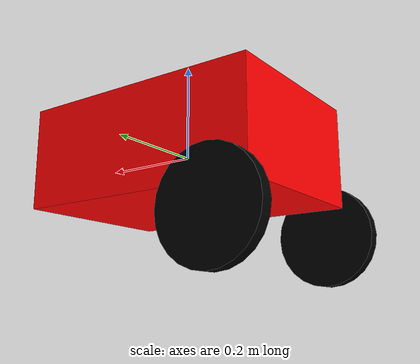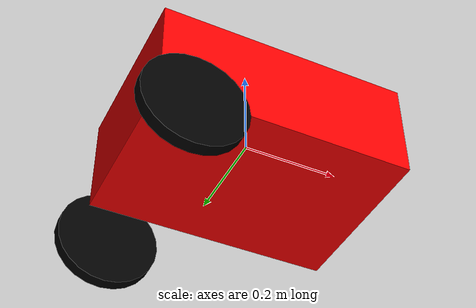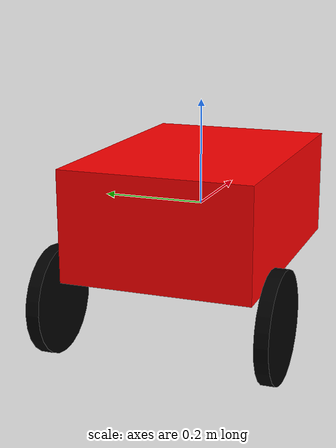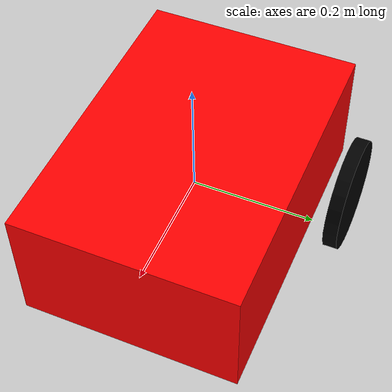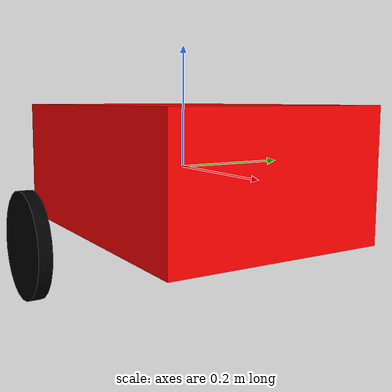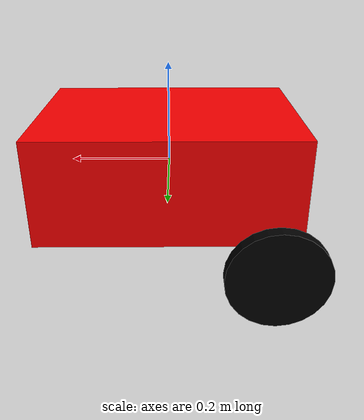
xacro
<?xml version="1.0" encoding="utf-8"?>
<robot name="aug_2024" xmlns:xacro="http://www.ros.org/wiki/xacro">
<xacro:arg name="use_sim" default="false"/>
  <material name="white">
    <color rgba="1 1 1 1"/>
  </material>

  <material name="black">
    <color rgba="0 0 0 1"/>
  </material>

  <material name="red">
    <color rgba="1 0 0 1"/>
  </material>

   <link name="base_link">
    <visual>
      <geometry>
        <box size="0.508 0.3572 0.208"/> <!-- 20x18x20 inches -->
      </geometry>
      <material name="red"/>
    </visual>
    <collision>
      <geometry>
        <box size="0.508 0.4572 0.508"/>
      </geometry>
    </collision>

  </link>

   <link name="rear_right_wheel">
    <visual>
      <geometry>
        <cylinder length="0.0254" radius="0.1016"/> <!-- 8 inch diameter -->
      </geometry>
      <material name="black"/>
    </visual>
    <collision>
      <geometry>
        <cylinder length="0.0254" radius="0.1016"/>
      </geometry>
    </collision>
    <inertial>
      <mass value="1"/>
      <inertia ixx="0.01" ixy="0.0" ixz="0.0" iyy="0.01" iyz="0.0" izz="0.01"/>
    </inertial>
  </link>

  <joint name="rear_right_wheel_joint" type="continuous">
    <parent link="base_link"/>
    <child link="rear_right_wheel"/>
    <origin xyz="-0.2032 -0.20955 -0.154" rpy="1.5707 0 0"/> <!-- 8 inches back, 8.25 inches right, 10 inches down -->
    <axis xyz="0 0 1"/>
  </joint>

 <!-- Left Wheel -->
  <link name="rear_left_wheel">
    <visual>
      <geometry>
        <cylinder length="0.0254" radius="0.1016"/> <!-- 8 inch diameter -->
      </geometry>
      <material name="black"/>
    </visual>
    <collision>
      <geometry>
        <cylinder length="0.0254" radius="0.1016"/>
      </geometry>
    </collision>
    <inertial>
      <mass value="1"/>
      <inertia ixx="0.01" ixy="0.0" ixz="0.0" iyy="0.01" iyz="0.0" izz="0.01"/>
    </inertial>
  </link>

  <joint name="rear_left_wheel_joint" type="continuous">
    <parent link="base_link"/>
    <child link="rear_left_wheel"/>
    <origin xyz="-0.2032 0.20955 -0.154" rpy="1.5707 0 0"/> <!-- 8 inches back, 8.25 inches left, 10 inches down -->
    <axis xyz="0 0 1"/>
  </joint>
  <gazebo reference="rear_left_wheel_link">
    <material>Gazebo/Black</material>
  </gazebo>

<!-- Right Caster -->
<!-- Right Caster Assembly -->

<ros2_control name="AUG2024System" type="system">
  <xacro:if value="$(arg use_sim)">
    <hardware>
      <plugin>gazebo_ros2_control/GazeboSystem</plugin>
    </hardware>
  </xacro:if>
  <xacro:unless value="$(arg use_sim)">
    <hardware>
      <plugin>BMC_2024/AUG2024Hardware</plugin>
      <param name="rear_left_wheel_name">rear_left_wheel_joint</param>
      <param name="rear_right_wheel_name">rear_right_wheel_joint</param>
      <param name="can_interface">can0</param>
      <param name="can_fl_id">183</param>
      <param name="can_fr_id">177</param>
      <param name="can_rl_id">176</param>
      <param name="can_rr_id">178</param>
      <param name="rl_mult">1.0</param>
      <param name="rr_mult">-1.0</param>
      <param name="pid_p">0.5</param>
      <param name="pid_i">10.0</param>
      <param name="pid_d">0.0</param>
    </hardware>
  </xacro:unless>
  <joint name="rear_left_wheel_joint">
    <command_interface name="velocity">
      <param name="min">-10</param>
      <param name="max">10</param>
    </command_interface>
    <state_interface name="velocity"/>
    <state_interface name="position"/>
  </joint>
  <joint name="rear_right_wheel_joint">
    <command_interface name="velocity">
      <param name="min">-10</param>
      <param name="max">10</param>
    </command_interface>
    <state_interface name="velocity"/>
    <state_interface name="position"/>
  </joint>
</ros2_control>

    <gazebo>
      <plugin name="gazebo_ros2_control" filename="libgazebo_ros2_control.so">
         <parameters>$(find aug_2024)/config/flippo_controllers.yaml</parameters>
      </plugin>
    </gazebo>

    <gazebo>
      <plugin name="gazebo_ros_state" filename="libgazebo_ros_state.so">
        <update_rate>100</update_rate>
      </plugin>
    </gazebo>

    <gazebo reference="chassis_link">
      <material>Gazebo/White</material>
    </gazebo>

    <gazebo reference="front_left_wheel_link">
      <material>Gazebo/Black</material>
      <mu1 value="1.0"/>
      <mu2 value="1.0"/>
      <kp value="10000000.0" />
      <kd value="1.0" />
    </gazebo>

    <gazebo reference="front_right_wheel_link">
      <material>Gazebo/Black</material>
      <mu1 value="1.0"/>
      <mu2 value="1.0"/>
      <kp value="10000000.0" />
      <kd value="1.0" />
    </gazebo>

    <gazebo reference="rear_left_wheel_link">
      <material>Gazebo/Black</material>
      <mu1 value="1.0"/>
      <mu2 value="1.0"/>
      <kp value="10000000.0" />
      <kd value="1.0" />
    </gazebo>

    <gazebo reference="rear_right_wheel_link">
      <material>Gazebo/Black</material>
      <mu1 value="1.0"/>
      <mu2 value="1.0"/>
      <kp value="10000000.0" />
      <kd value="1.0" />
    </gazebo>

</robot>
